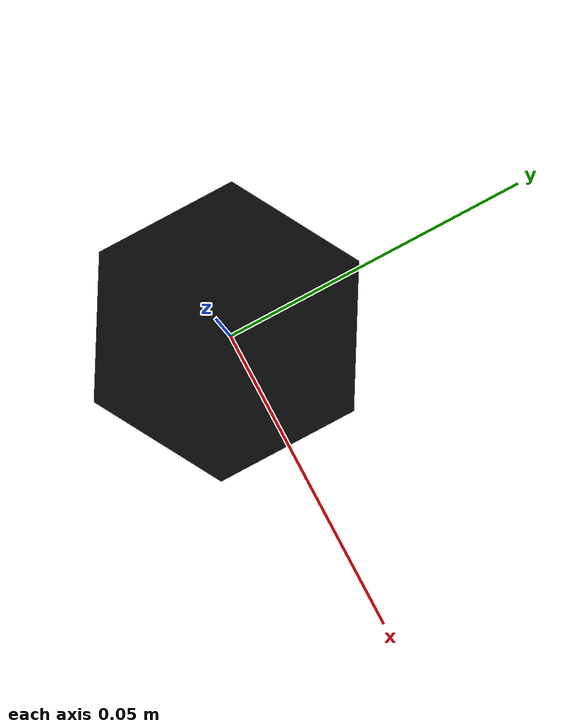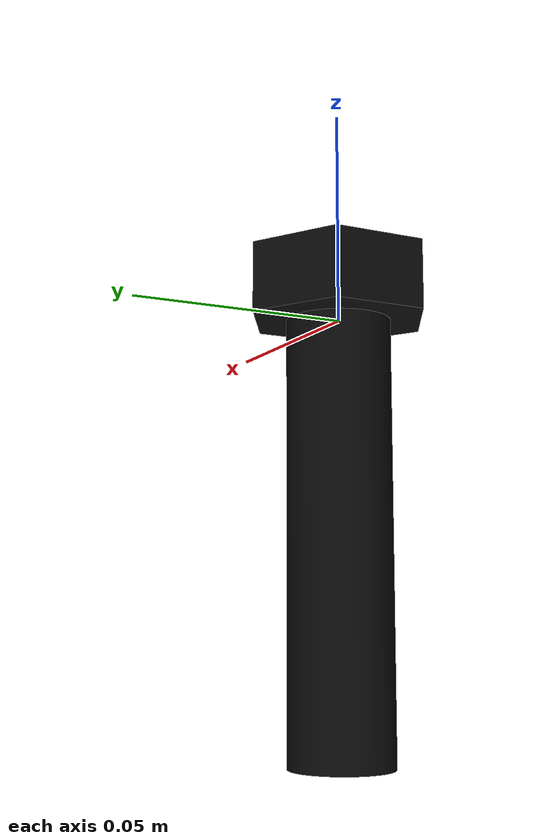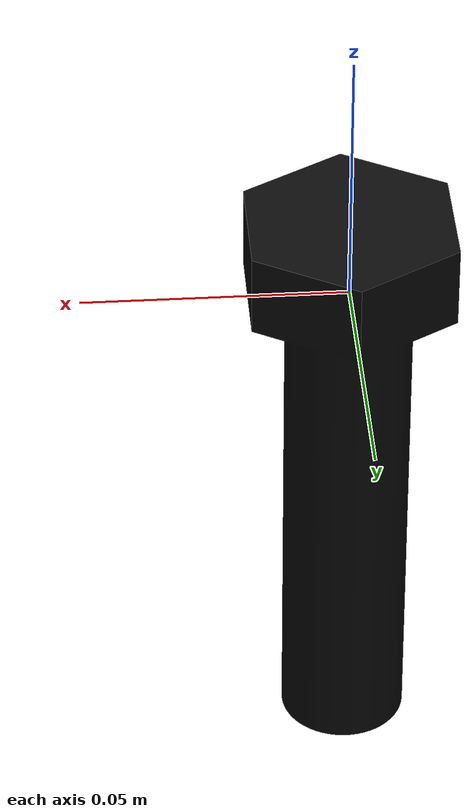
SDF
<?xml version="1.0" ?>
<sdf version="1.6">
  <model name="bolt">
    <static>false</static>
    <link name="link">
      <inertial>
        <mass>0.064</mass>
        <inertia>
          <ixx>0.000021715</ixx>
          <ixy>0</ixy>
          <ixz>0</ixz>
          <iyy>0.000021715</iyy>
          <iyz>0</iyz>
          <izz>0.00000178</izz>
        </inertia>
        <pose>0 0 0 0 0 0</pose>
      </inertial>
      <collision name="collision">
        <geometry>
          <mesh>
            <scale>1 1 1</scale>
            <uri>model://bolt/meshes/bolt.stl</uri>
          </mesh>
        </geometry>
        <surface>
          <bounce>
            <restitution_coefficient>0</restitution_coefficient>
            <threshold>0.01</threshold>
          </bounce>
          <friction>
            <ode>
              <mu>1.2</mu>
              <mu2>1.2</mu2>
            </ode>
          </friction>
        </surface>
      </collision>
      <visual name="visual">
        <geometry>
          <mesh>
            <scale>1 1 1</scale>
            <uri>model://bolt/meshes/bolt.dae</uri>
          </mesh>
        </geometry>
      </visual>
    </link>
  </model>
</sdf>
